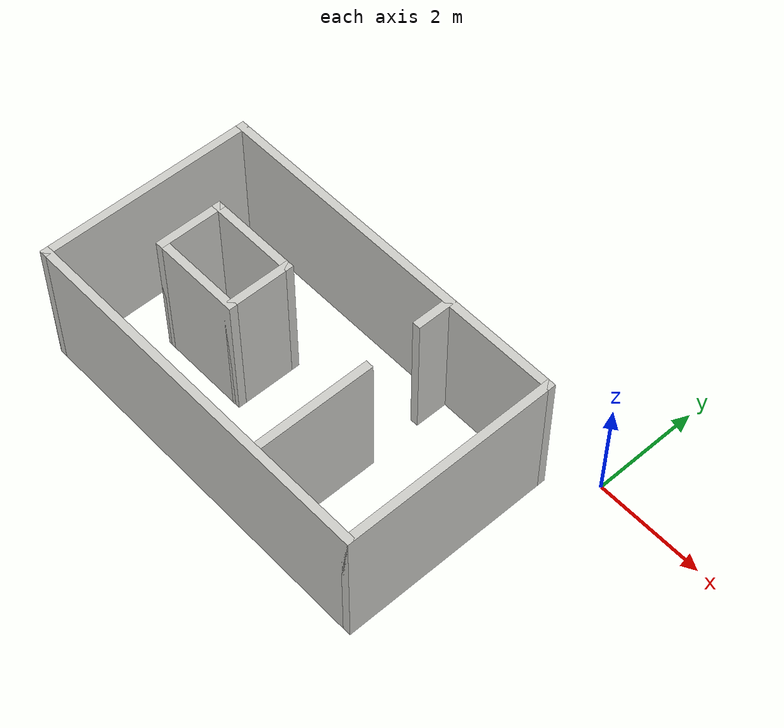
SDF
<?xml version='1.0'?>
<sdf version='1.6'>
  <model name='test_room1'>
    <pose frame=''>-4.18008 -2.55227 0 0 -0 0</pose>
    <link name='Wall_0'>
      <collision name='Wall_0_Collision'>
        <geometry>
          <box>
            <size>4 0.15 2.5</size>
          </box>
        </geometry>
        <pose frame=''>0 0 1.25 0 -0 0</pose>
      </collision>
      <visual name='Wall_0_Visual'>
        <pose frame=''>0 0 1.25 0 -0 0</pose>
        <geometry>
          <box>
            <size>4 0.15 2.5</size>
          </box>
        </geometry>
        <material>
          <script>
            <uri>file://media/materials/scripts/gazebo.material</uri>
            <name>Gazebo/CeilingTiled</name>
          </script>
          <ambient>1 1 1 1</ambient>
        </material>
        <meta>
          <layer>0</layer>
        </meta>
      </visual>
      <pose frame=''>-3.425 0 0 0 -0 -1.5708</pose>
    </link>
    <link name='Wall_1'>
      <collision name='Wall_1_Collision'>
        <geometry>
          <box>
            <size>7 0.15 2.5</size>
          </box>
        </geometry>
        <pose frame=''>0 0 1.25 0 -0 0</pose>
      </collision>
      <visual name='Wall_1_Visual'>
        <pose frame=''>0 0 1.25 0 -0 0</pose>
        <geometry>
          <box>
            <size>7 0.15 2.5</size>
          </box>
        </geometry>
        <material>
          <script>
            <uri>file://media/materials/scripts/gazebo.material</uri>
            <name>Gazebo/CeilingTiled</name>
          </script>
          <ambient>1 1 1 1</ambient>
        </material>
        <meta>
          <layer>0</layer>
        </meta>
      </visual>
      <pose frame=''>0 -1.925 0 0 -0 0</pose>
    </link>
    <link name='Wall_10'>
      <collision name='Wall_10_Collision'>
        <geometry>
          <box>
            <size>0.75 0.15 2.5</size>
          </box>
        </geometry>
        <pose frame=''>0 0 1.25 0 -0 0</pose>
      </collision>
      <visual name='Wall_10_Visual'>
        <pose frame=''>0 0 1.25 0 -0 0</pose>
        <geometry>
          <box>
            <size>0.75 0.15 2.5</size>
          </box>
        </geometry>
        <material>
          <script>
            <uri>file://media/materials/scripts/gazebo.material</uri>
            <name>Gazebo/CeilingTiled</name>
          </script>
          <ambient>1 1 1 1</ambient>
        </material>
        <meta>
          <layer>0</layer>
        </meta>
      </visual>
      <pose frame=''>1.36203 1.625 0 0 -0 -1.5708</pose>
    </link>
    <link name='Wall_13'>
      <collision name='Wall_13_Collision'>
        <geometry>
          <box>
            <size>2.25 0.15 2.5</size>
          </box>
        </geometry>
        <pose frame=''>0 0 1.25 0 -0 0</pose>
      </collision>
      <visual name='Wall_13_Visual'>
        <pose frame=''>0 0 1.25 0 -0 0</pose>
        <geometry>
          <box>
            <size>2.25 0.15 2.5</size>
          </box>
        </geometry>
        <material>
          <script>
            <uri>file://media/materials/scripts/gazebo.material</uri>
            <name>Gazebo/CeilingTiled</name>
          </script>
          <ambient>1 1 1 1</ambient>
        </material>
        <meta>
          <layer>0</layer>
        </meta>
      </visual>
      <pose frame=''>1.42237 -0.846578 0 0 -0 1.5708</pose>
    </link>
    <link name='Wall_2'>
      <collision name='Wall_2_Collision'>
        <geometry>
          <box>
            <size>4 0.15 2.5</size>
          </box>
        </geometry>
        <pose frame=''>0 0 1.25 0 -0 0</pose>
      </collision>
      <visual name='Wall_2_Visual'>
        <pose frame=''>0 0 1.25 0 -0 0</pose>
        <geometry>
          <box>
            <size>4 0.15 2.5</size>
          </box>
        </geometry>
        <material>
          <script>
            <uri>file://media/materials/scripts/gazebo.material</uri>
            <name>Gazebo/CeilingTiled</name>
          </script>
          <ambient>1 1 1 1</ambient>
        </material>
        <meta>
          <layer>0</layer>
        </meta>
      </visual>
      <pose frame=''>3.425 0 0 0 -0 1.5708</pose>
    </link>
    <link name='Wall_3'>
      <collision name='Wall_3_Collision'>
        <geometry>
          <box>
            <size>7 0.15 2.5</size>
          </box>
        </geometry>
        <pose frame=''>0 0 1.25 0 -0 0</pose>
      </collision>
      <visual name='Wall_3_Visual'>
        <pose frame=''>0 0 1.25 0 -0 0</pose>
        <geometry>
          <box>
            <size>7 0.15 2.5</size>
          </box>
        </geometry>
        <material>
          <script>
            <uri>file://media/materials/scripts/gazebo.material</uri>
            <name>Gazebo/CeilingTiled</name>
          </script>
          <ambient>1 1 1 1</ambient>
        </material>
        <meta>
          <layer>0</layer>
        </meta>
      </visual>
      <pose frame=''>0 1.925 0 0 -0 3.14159</pose>
    </link>
    <link name='Wall_5'>
      <collision name='Wall_5_Collision'>
        <geometry>
          <box>
            <size>1.25 0.15 2.5</size>
          </box>
        </geometry>
        <pose frame=''>0 0 1.25 0 -0 0</pose>
      </collision>
      <visual name='Wall_5_Visual'>
        <pose frame=''>0 0 1.25 0 -0 0</pose>
        <geometry>
          <box>
            <size>1.25 0.15 2.5</size>
          </box>
        </geometry>
        <material>
          <script>
            <uri>file://media/materials/scripts/gazebo.material</uri>
            <name>Gazebo/CeilingTiled</name>
          </script>
          <ambient>1 1 1 1</ambient>
        </material>
        <meta>
          <layer>0</layer>
        </meta>
      </visual>
      <pose frame=''>-2.37909 0.027391 0 0 -0 -1.5708</pose>
    </link>
    <link name='Wall_6'>
      <collision name='Wall_6_Collision'>
        <geometry>
          <box>
            <size>1.75 0.15 2.5</size>
          </box>
        </geometry>
        <pose frame=''>0 0 1.25 0 -0 0</pose>
      </collision>
      <visual name='Wall_6_Visual'>
        <pose frame=''>0 0 1.25 0 -0 0</pose>
        <geometry>
          <box>
            <size>1.75 0.15 2.5</size>
          </box>
        </geometry>
        <material>
          <script>
            <uri>file://media/materials/scripts/gazebo.material</uri>
            <name>Gazebo/CeilingTiled</name>
          </script>
          <ambient>1 1 1 1</ambient>
        </material>
        <meta>
          <layer>0</layer>
        </meta>
      </visual>
      <pose frame=''>-1.57909 -0.522609 0 0 -0 0</pose>
    </link>
    <link name='Wall_7'>
      <collision name='Wall_7_Collision'>
        <geometry>
          <box>
            <size>1.25 0.15 2.5</size>
          </box>
        </geometry>
        <pose frame=''>0 0 1.25 0 -0 0</pose>
      </collision>
      <visual name='Wall_7_Visual'>
        <pose frame=''>0 0 1.25 0 -0 0</pose>
        <geometry>
          <box>
            <size>1.25 0.15 2.5</size>
          </box>
        </geometry>
        <material>
          <script>
            <uri>file://media/materials/scripts/gazebo.material</uri>
            <name>Gazebo/CeilingTiled</name>
          </script>
          <ambient>1 1 1 1</ambient>
        </material>
        <meta>
          <layer>0</layer>
        </meta>
      </visual>
      <pose frame=''>-0.779094 0.027391 0 0 -0 1.5708</pose>
    </link>
    <link name='Wall_8'>
      <collision name='Wall_8_Collision'>
        <geometry>
          <box>
            <size>1.75 0.15 2.5</size>
          </box>
        </geometry>
        <pose frame=''>0 0 1.25 0 -0 0</pose>
      </collision>
      <visual name='Wall_8_Visual'>
        <pose frame=''>0 0 1.25 0 -0 0</pose>
        <geometry>
          <box>
            <size>1.75 0.15 2.5</size>
          </box>
        </geometry>
        <material>
          <script>
            <uri>file://media/materials/scripts/gazebo.material</uri>
            <name>Gazebo/CeilingTiled</name>
          </script>
          <ambient>1 1 1 1</ambient>
        </material>
        <meta>
          <layer>0</layer>
        </meta>
      </visual>
      <pose frame=''>-1.57909 0.577391 0 0 -0 3.14159</pose>
    </link>
    <static>1</static>
  </model>
</sdf>
